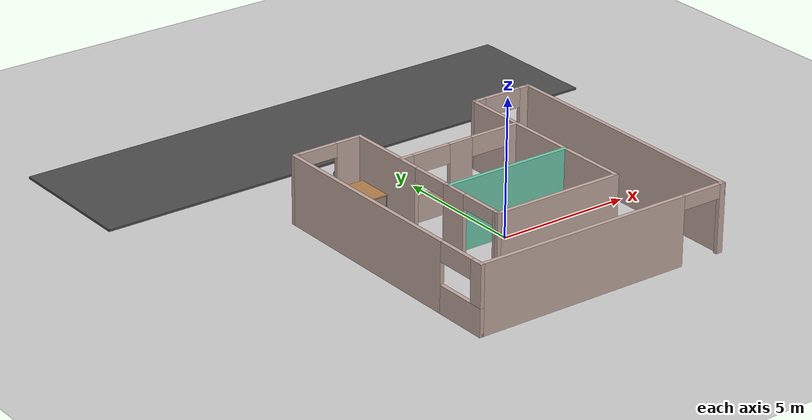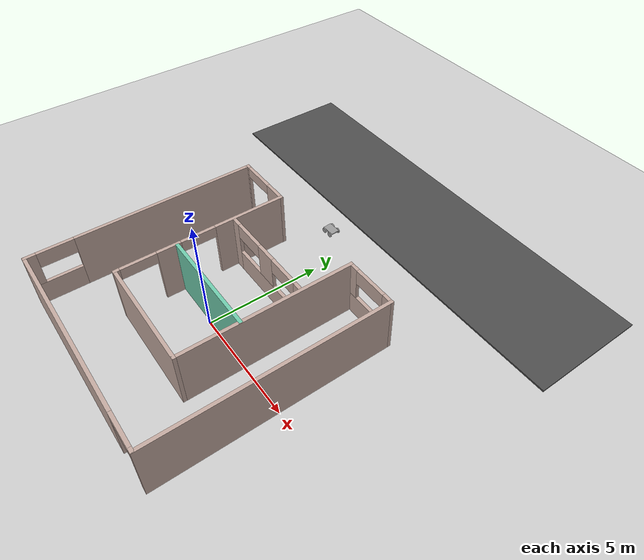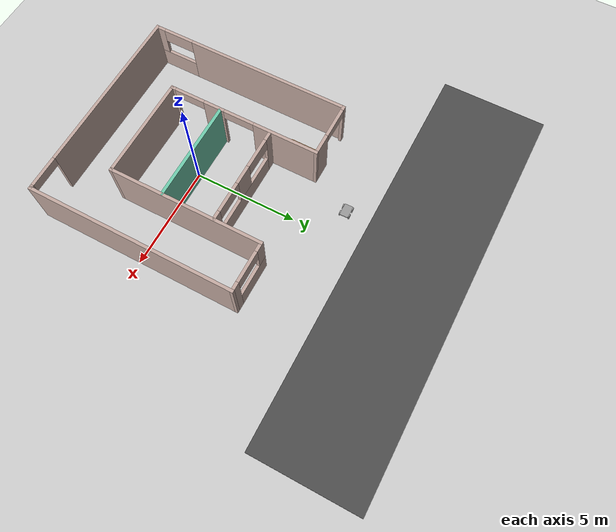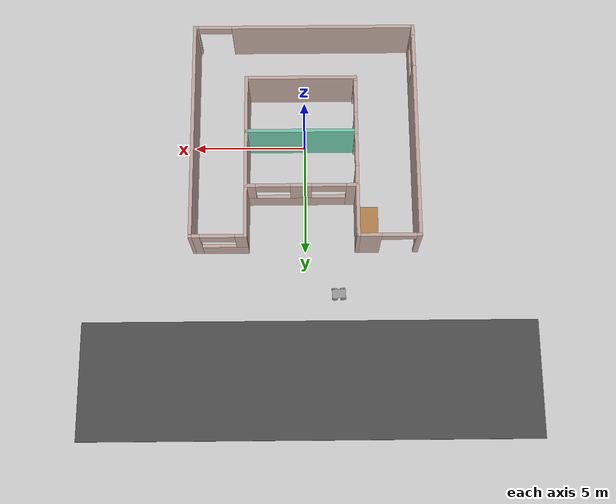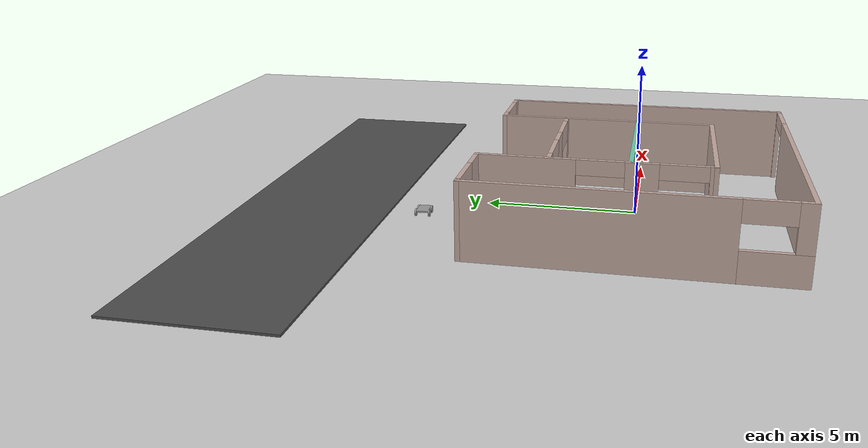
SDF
<sdf version="1.6">
 <world name="firstworld">
  <model name="ground_plane">
   <static>1</static>
   <link name="link">
    <collision name="collision">
     <geometry><plane><normal>0 0 1</normal><size>100 100</size></plane></geometry>
     <surface><friction><ode><mu>100</mu><mu2>50</mu2></ode></friction></surface>
    </collision>
    <visual name="visual">
     <cast_shadows>0</cast_shadows>
     <geometry><plane><normal>0 0 1</normal><size>100 100</size></plane></geometry>
     <material>
      <script><uri>file://media/materials/scripts/gazebo.material</uri><name>Gazebo/Grey</name></script>
     </material>
    </visual>
   </link>
  </model>
  <model name="myhouse2">
   <link name="Wall_12">
    <collision name="Wall_12_Collision">
     <geometry><box><size>4.95 0.15 2.5</size></box></geometry>
     <pose>0 0 1.25 0 -0 0</pose>
    </collision>
    <visual name="Wall_12_Visual">
     <pose>0 0 1.25 0 -0 0</pose>
     <geometry><box><size>4.95 0.15 2.5</size></box></geometry>
     <material>
      <script><uri>file://media/materials/scripts/gazebo.material</uri><name>Gazebo/Grey</name></script>
      <ambient>0.435294 0.796078 0.67451 1</ambient>
     </material>
    </visual>
    <pose>0.154415 0.125579 0 0 -0 0</pose>
   </link>
   <link name="Wall_14">
    <pose>0.171529 2.66127 0 0 -0 0</pose>
    <visual name="Wall_14_Visual_0">
     <pose>-2.21784 0 1.25 0 -0 0</pose>
     <geometry><box><size>0.514324 0.15 2.5</size></box></geometry>
     <material>
      <script><uri>file://media/materials/scripts/gazebo.material</uri><name>Gazebo/Grey</name></script>
      <ambient>0.760784 0.662745 0.627451 1</ambient>
     </material>
    </visual>
    <collision name="Wall_14_Collision_0">
     <geometry><box><size>0.514324 0.15 2.5</size></box></geometry>
     <pose>-2.21784 0 1.25 0 -0 0</pose>
    </collision>
    <visual name="Wall_14_Visual_1">
     <pose>0.257162 0 0.5 0 -0 0</pose>
     <geometry><box><size>4.43568 0.15 1</size></box></geometry>
     <material>
      <script><uri>file://media/materials/scripts/gazebo.material</uri><name>Gazebo/Grey</name></script>
      <ambient>0.760784 0.662745 0.627451 1</ambient>
     </material>
    </visual>
    <collision name="Wall_14_Collision_1">
     <geometry><box><size>4.43568 0.15 1</size></box></geometry>
     <pose>0.257162 0 0.5 0 -0 0</pose>
    </collision>
    <visual name="Wall_14_Visual_2">
     <pose>0.004883 0 1.75 0 -0 0</pose>
     <geometry><box><size>0.931118 0.15 1.5</size></box></geometry>
     <material>
      <script><uri>file://media/materials/scripts/gazebo.material</uri><name>Gazebo/Grey</name></script>
      <ambient>0.760784 0.662745 0.627451 1</ambient>
     </material>
    </visual>
    <collision name="Wall_14_Collision_2">
     <geometry><box><size>0.931118 0.15 1.5</size></box></geometry>
     <pose>0.004883 0 1.75 0 -0 0</pose>
    </collision>
    <visual name="Wall_14_Visual_3">
     <pose>2.22272 0 1.75 0 -0 0</pose>
     <geometry><box><size>0.504558 0.15 1.5</size></box></geometry>
     <material>
      <script><uri>file://media/materials/scripts/gazebo.material</uri><name>Gazebo/Grey</name></script>
      <ambient>0.760784 0.662745 0.627451 1</ambient>
     </material>
    </visual>
    <collision name="Wall_14_Collision_3">
     <geometry><box><size>0.504558 0.15 1.5</size></box></geometry>
     <pose>2.22272 0 1.75 0 -0 0</pose>
    </collision>
    <visual name="Wall_14_Visual_4">
     <pose>-1.21068 0 2.15 0 -0 0</pose>
     <geometry><box><size>1.5 0.15 0.7</size></box></geometry>
     <material>
      <script><uri>file://media/materials/scripts/gazebo.material</uri><name>Gazebo/Grey</name></script>
      <ambient>0.760784 0.662745 0.627451 1</ambient>
     </material>
    </visual>
    <collision name="Wall_14_Collision_4">
     <geometry><box><size>1.5 0.15 0.7</size></box></geometry>
     <pose>-1.21068 0 2.15 0 -0 0</pose>
    </collision>
    <visual name="Wall_14_Visual_5">
     <pose>1.22044 0 2.15 0 -0 0</pose>
     <geometry><box><size>1.5 0.15 0.7</size></box></geometry>
     <material>
      <script><uri>file://media/materials/scripts/gazebo.material</uri><name>Gazebo/Grey</name></script>
      <ambient>0.760784 0.662745 0.627451 1</ambient>
     </material>
    </visual>
    <collision name="Wall_14_Collision_5">
     <geometry><box><size>1.5 0.15 0.7</size></box></geometry>
     <pose>1.22044 0 2.15 0 -0 0</pose>
    </collision>
   </link>
   <link name="Wall_2">
    <pose>-4.925 0 0 0 0 -1.5708</pose>
    <visual name="Wall_2_Visual_0">
     <pose>-1.00495 0 1.25 0 -0 0</pose>
     <geometry><box><size>7.9901 0.15 2.5</size></box></geometry>
     <material>
      <script><uri>file://media/materials/scripts/gazebo.material</uri><name>Gazebo/Grey</name></script>
      <ambient>0.760784 0.662745 0.627451 1</ambient>
     </material>
    </visual>
    <collision name="Wall_2_Collision_0">
     <geometry><box><size>7.9901 0.15 2.5</size></box></geometry>
     <pose>-1.00495 0 1.25 0 -0 0</pose>
    </collision>
    <visual name="Wall_2_Visual_1">
     <pose>3.99505 0 0.5 0 -0 0</pose>
     <geometry><box><size>2.0099 0.15 1</size></box></geometry>
     <material>
      <script><uri>file://media/materials/scripts/gazebo.material</uri><name>Gazebo/Grey</name></script>
      <ambient>0.760784 0.662745 0.627451 1</ambient>
     </material>
    </visual>
    <collision name="Wall_2_Collision_1">
     <geometry><box><size>2.0099 0.15 1</size></box></geometry>
     <pose>3.99505 0 0.5 0 -0 0</pose>
    </collision>
    <visual name="Wall_2_Visual_2">
     <pose>4.74505 0 1.75 0 -0 0</pose>
     <geometry><box><size>0.509904 0.15 1.5</size></box></geometry>
     <material>
      <script><uri>file://media/materials/scripts/gazebo.material</uri><name>Gazebo/Grey</name></script>
      <ambient>0.760784 0.662745 0.627451 1</ambient>
     </material>
    </visual>
    <collision name="Wall_2_Collision_2">
     <geometry><box><size>0.509904 0.15 1.5</size></box></geometry>
     <pose>4.74505 0 1.75 0 -0 0</pose>
    </collision>
    <visual name="Wall_2_Visual_3">
     <pose>3.7401 0 2.15 0 -0 0</pose>
     <geometry><box><size>1.5 0.15 0.7</size></box></geometry>
     <material>
      <script><uri>file://media/materials/scripts/gazebo.material</uri><name>Gazebo/Grey</name></script>
      <ambient>0.760784 0.662745 0.627451 1</ambient>
     </material>
    </visual>
    <collision name="Wall_2_Collision_3">
     <geometry><box><size>1.5 0.15 0.7</size></box></geometry>
     <pose>3.7401 0 2.15 0 -0 0</pose>
    </collision>
   </link>
   <link name="Wall_3">
    <pose>0 -4.925 0 0 -0 0</pose>
    <visual name="Wall_3_Visual_0">
     <pose>-0.86726 0 1.25 0 -0 0</pose>
     <geometry><box><size>8.26548 0.15 2.5</size></box></geometry>
     <material>
      <script><uri>file://media/materials/scripts/gazebo.material</uri><name>Gazebo/Grey</name></script>
      <ambient>0.760784 0.662745 0.627451 1</ambient>
     </material>
    </visual>
    <collision name="Wall_3_Collision_0">
     <geometry><box><size>8.26548 0.15 2.5</size></box></geometry>
     <pose>-0.86726 0 1.25 0 -0 0</pose>
    </collision>
    <visual name="Wall_3_Visual_1">
     <pose>4.88274 0 1.25 0 -0 0</pose>
     <geometry><box><size>0.234519 0.15 2.5</size></box></geometry>
     <material>
      <script><uri>file://media/materials/scripts/gazebo.material</uri><name>Gazebo/Grey</name></script>
      <ambient>0.760784 0.662745 0.627451 1</ambient>
     </material>
    </visual>
    <collision name="Wall_3_Collision_1">
     <geometry><box><size>0.234519 0.15 2.5</size></box></geometry>
     <pose>4.88274 0 1.25 0 -0 0</pose>
    </collision>
    <visual name="Wall_3_Visual_2">
     <pose>4.01548 0 2.25 0 -0 0</pose>
     <geometry><box><size>1.5 0.15 0.5</size></box></geometry>
     <material>
      <script><uri>file://media/materials/scripts/gazebo.material</uri><name>Gazebo/Grey</name></script>
      <ambient>0.760784 0.662745 0.627451 1</ambient>
     </material>
    </visual>
    <collision name="Wall_3_Collision_2">
     <geometry><box><size>1.5 0.15 0.5</size></box></geometry>
     <pose>4.01548 0 2.25 0 -0 0</pose>
    </collision>
   </link>
   <link name="Wall_4">
    <collision name="Wall_4_Collision">
     <geometry><box><size>10 0.15 2.5</size></box></geometry>
     <pose>0 0 1.25 0 -0 0</pose>
    </collision>
    <visual name="Wall_4_Visual">
     <pose>0 0 1.25 0 -0 0</pose>
     <geometry><box><size>10 0.15 2.5</size></box></geometry>
     <material>
      <script><uri>file://media/materials/scripts/gazebo.material</uri><name>Gazebo/Grey</name></script>
      <ambient>0.760784 0.662745 0.627451 1</ambient>
     </material>
    </visual>
    <pose>4.925 0 0 0 -0 1.5708</pose>
   </link>
   <link name="Wall_5">
    <pose>3.75 4.925 0 0 -0 3.14159</pose>
    <visual name="Wall_5_Visual_0">
     <pose>-1.00157 0 1.25 0 -0 0</pose>
     <geometry><box><size>0.49687 0.15 2.5</size></box></geometry>
     <material>
      <script><uri>file://media/materials/scripts/gazebo.material</uri><name>Gazebo/Grey</name></script>
      <ambient>0.760784 0.662745 0.627451 1</ambient>
     </material>
    </visual>
    <collision name="Wall_5_Collision_0">
     <geometry><box><size>0.49687 0.15 2.5</size></box></geometry>
     <pose>-1.00157 0 1.25 0 -0 0</pose>
    </collision>
    <visual name="Wall_5_Visual_1">
     <pose>0.248435 0 0.5 0 -0 0</pose>
     <geometry><box><size>2.00313 0.15 1</size></box></geometry>
     <material>
      <script><uri>file://media/materials/scripts/gazebo.material</uri><name>Gazebo/Grey</name></script>
      <ambient>0.760784 0.662745 0.627451 1</ambient>
     </material>
    </visual>
    <collision name="Wall_5_Collision_1">
     <geometry><box><size>2.00313 0.15 1</size></box></geometry>
     <pose>0.248435 0 0.5 0 -0 0</pose>
    </collision>
    <visual name="Wall_5_Visual_2">
     <pose>0.998435 0 1.75 0 -0 0</pose>
     <geometry><box><size>0.50313 0.15 1.5</size></box></geometry>
     <material>
      <script><uri>file://media/materials/scripts/gazebo.material</uri><name>Gazebo/Grey</name></script>
      <ambient>0.760784 0.662745 0.627451 1</ambient>
     </material>
    </visual>
    <collision name="Wall_5_Collision_2">
     <geometry><box><size>0.50313 0.15 1.5</size></box></geometry>
     <pose>0.998435 0 1.75 0 -0 0</pose>
    </collision>
    <visual name="Wall_5_Visual_3">
     <pose>-0.00313 0 2.15 0 -0 0</pose>
     <geometry><box><size>1.5 0.15 0.7</size></box></geometry>
     <material>
      <script><uri>file://media/materials/scripts/gazebo.material</uri><name>Gazebo/Grey</name></script>
      <ambient>0.760784 0.662745 0.627451 1</ambient>
     </material>
    </visual>
    <collision name="Wall_5_Collision_3">
     <geometry><box><size>1.5 0.15 0.7</size></box></geometry>
     <pose>-0.00313 0 2.15 0 -0 0</pose>
    </collision>
   </link>
   <link name="Wall_6">
    <collision name="Wall_6_Collision">
     <geometry><box><size>7.5 0.15 2.5</size></box></geometry>
     <pose>0 0 1.25 0 -0 0</pose>
    </collision>
    <visual name="Wall_6_Visual">
     <pose>0 0 1.25 0 -0 0</pose>
     <geometry><box><size>7.5 0.15 2.5</size></box></geometry>
     <material>
      <script><uri>file://media/materials/scripts/gazebo.material</uri><name>Gazebo/Grey</name></script>
      <ambient>0.760784 0.662745 0.627451 1</ambient>
     </material>
    </visual>
    <pose>2.575 1.25 0 0 0 -1.5708</pose>
   </link>
   <link name="Wall_7">
    <collision name="Wall_7_Collision">
     <geometry><box><size>5 0.15 2.5</size></box></geometry>
     <pose>0 0 1.25 0 -0 0</pose>
    </collision>
    <visual name="Wall_7_Visual">
     <pose>0 0 1.25 0 -0 0</pose>
     <geometry><box><size>5 0.15 2.5</size></box></geometry>
     <material>
      <script><uri>file://media/materials/scripts/gazebo.material</uri><name>Gazebo/Grey</name></script>
      <ambient>0.760784 0.662745 0.627451 1</ambient>
     </material>
    </visual>
    <pose>0.150001 -2.425 0 0 -0 3.14159</pose>
   </link>
   <link name="Wall_8">
    <pose>-2.275 1.25 0 0 -0 1.5708</pose>
    <visual name="Wall_8_Visual_0">
     <pose>-3.61694 0 1.25 0 -0 0</pose>
     <geometry><box><size>0.266121 0.15 2.5</size></box></geometry>
     <material>
      <script><uri>file://media/materials/scripts/gazebo.material</uri><name>Gazebo/Grey</name></script>
      <ambient>0.760784 0.662745 0.627451 1</ambient>
     </material>
    </visual>
    <collision name="Wall_8_Collision_0">
     <geometry><box><size>0.266121 0.15 2.5</size></box></geometry>
     <pose>-3.61694 0 1.25 0 -0 0</pose>
    </collision>
    <visual name="Wall_8_Visual_1">
     <pose>-1.46585 0 1.25 0 -0 0</pose>
     <geometry><box><size>1.03606 0.15 2.5</size></box></geometry>
     <material>
      <script><uri>file://media/materials/scripts/gazebo.material</uri><name>Gazebo/Grey</name></script>
      <ambient>0.760784 0.662745 0.627451 1</ambient>
     </material>
    </visual>
    <collision name="Wall_8_Collision_1">
     <geometry><box><size>1.03606 0.15 2.5</size></box></geometry>
     <pose>-1.46585 0 1.25 0 -0 0</pose>
    </collision>
    <visual name="Wall_8_Visual_2">
     <pose>2.15109 0 1.25 0 -0 0</pose>
     <geometry><box><size>3.19782 0.15 2.5</size></box></geometry>
     <material>
      <script><uri>file://media/materials/scripts/gazebo.material</uri><name>Gazebo/Grey</name></script>
      <ambient>0.760784 0.662745 0.627451 1</ambient>
     </material>
    </visual>
    <collision name="Wall_8_Collision_2">
     <geometry><box><size>3.19782 0.15 2.5</size></box></geometry>
     <pose>2.15109 0 1.25 0 -0 0</pose>
    </collision>
    <visual name="Wall_8_Visual_3">
     <pose>-2.73388 0 2.25 0 -0 0</pose>
     <geometry><box><size>1.5 0.15 0.5</size></box></geometry>
     <material>
      <script><uri>file://media/materials/scripts/gazebo.material</uri><name>Gazebo/Grey</name></script>
      <ambient>0.760784 0.662745 0.627451 1</ambient>
     </material>
    </visual>
    <collision name="Wall_8_Collision_3">
     <geometry><box><size>1.5 0.15 0.5</size></box></geometry>
     <pose>-2.73388 0 2.25 0 -0 0</pose>
    </collision>
    <visual name="Wall_8_Visual_4">
     <pose>-0.197819 0 2.25 0 -0 0</pose>
     <geometry><box><size>1.5 0.15 0.5</size></box></geometry>
     <material>
      <script><uri>file://media/materials/scripts/gazebo.material</uri><name>Gazebo/Grey</name></script>
      <ambient>0.760784 0.662745 0.627451 1</ambient>
     </material>
    </visual>
    <collision name="Wall_8_Collision_4">
     <geometry><box><size>1.5 0.15 0.5</size></box></geometry>
     <pose>-0.197819 0 2.25 0 -0 0</pose>
    </collision>
   </link>
   <link name="Wall_9">
    <pose>-3.6 4.925 0 0 -0 3.14159</pose>
    <visual name="Wall_9_Visual_0">
     <pose>-0.868771 0 1.25 0 -0 0</pose>
     <geometry><box><size>1.06246 0.15 2.5</size></box></geometry>
     <material>
      <script><uri>file://media/materials/scripts/gazebo.material</uri><name>Gazebo/Grey</name></script>
      <ambient>0.760784 0.662745 0.627451 1</ambient>
     </material>
    </visual>
    <collision name="Wall_9_Collision_0">
     <geometry><box><size>1.06246 0.15 2.5</size></box></geometry>
     <pose>-0.868771 0 1.25 0 -0 0</pose>
    </collision>
    <visual name="Wall_9_Visual_1">
     <pose>1.28123 0 1.25 0 -0 0</pose>
     <geometry><box><size>0.237542 0.15 2.5</size></box></geometry>
     <material>
      <script><uri>file://media/materials/scripts/gazebo.material</uri><name>Gazebo/Grey</name></script>
      <ambient>0.760784 0.662745 0.627451 1</ambient>
     </material>
    </visual>
    <collision name="Wall_9_Collision_1">
     <geometry><box><size>0.237542 0.15 2.5</size></box></geometry>
     <pose>1.28123 0 1.25 0 -0 0</pose>
    </collision>
    <visual name="Wall_9_Visual_2">
     <pose>0.412458 0 2.25 0 -0 0</pose>
     <geometry><box><size>1.5 0.15 0.5</size></box></geometry>
     <material>
      <script><uri>file://media/materials/scripts/gazebo.material</uri><name>Gazebo/Grey</name></script>
      <ambient>0.760784 0.662745 0.627451 1</ambient>
     </material>
    </visual>
    <collision name="Wall_9_Collision_2">
     <geometry><box><size>1.5 0.15 0.5</size></box></geometry>
     <pose>0.412458 0 2.25 0 -0 0</pose>
    </collision>
   </link>
   <static>1</static>
  </model>
  <model name="table">
   <static>0</static>
   <link name="link">
    <collision name="surface">
     <pose>0 0 1 0 -0 0</pose>
     <geometry><box><size>1.5 0.8 0.03</size></box></geometry>
     <surface><friction><ode><mu>0.6</mu><mu2>0.6</mu2></ode></friction></surface>
    </collision>
    <visual name="visual1">
     <pose>0 0 1 0 -0 0</pose>
     <geometry><box><size>1.4 0.8 0.04</size></box></geometry>
     <material>
      <script><uri>file://media/materials/scripts/gazebo.material</uri><name>Gazebo/Wood</name></script>
     </material>
    </visual>
    <collision name="front_left_leg">
     <pose>0.68 0.38 0.5 0 -0 0</pose>
     <geometry><cylinder><radius>0.02</radius><length>1</length></cylinder></geometry>
    </collision>
    <visual name="front_left_leg">
     <pose>0.68 0.38 0.5 0 -0 0</pose>
     <geometry><cylinder><radius>0.02</radius><length>1</length></cylinder></geometry>
     <material>
      <script><uri>file://media/materials/scripts/gazebo.material</uri><name>Gazebo/Grey</name></script>
     </material>
    </visual>
    <collision name="front_right_leg">
     <pose>0.68 -0.38 0.5 0 -0 0</pose>
     <geometry><cylinder><radius>0.02</radius><length>1</length></cylinder></geometry>
    </collision>
    <visual name="front_right_leg">
     <pose>0.68 -0.38 0.5 0 -0 0</pose>
     <geometry><cylinder><radius>0.02</radius><length>1</length></cylinder></geometry>
     <material>
      <script><uri>file://media/materials/scripts/gazebo.material</uri><name>Gazebo/Grey</name></script>
     </material>
    </visual>
    <collision name="back_right_leg">
     <pose>-0.68 -0.38 0.5 0 -0 0</pose>
     <geometry><cylinder><radius>0.02</radius><length>1</length></cylinder></geometry>
    </collision>
    <visual name="back_right_leg">
     <pose>-0.68 -0.38 0.5 0 -0 0</pose>
     <geometry><cylinder><radius>0.02</radius><length>1</length></cylinder></geometry>
     <material>
      <script><uri>file://media/materials/scripts/gazebo.material</uri><name>Gazebo/Grey</name></script>
     </material>
    </visual>
    <collision name="back_left_leg">
     <pose>-0.68 0.38 0.5 0 -0 0</pose>
     <geometry><cylinder><radius>0.02</radius><length>1</length></cylinder></geometry>
    </collision>
    <visual name="back_left_leg">
     <pose>-0.68 0.38 0.5 0 -0 0</pose>
     <geometry><cylinder><radius>0.02</radius><length>1</length></cylinder></geometry>
     <material>
      <script><uri>file://media/materials/scripts/gazebo.material</uri><name>Gazebo/Grey</name></script>
     </material>
    </visual>
    <inertial>
     <inertia><ixx>1</ixx><ixy>0</ixy><ixz>0</ixz><iyy>1</iyy><iyz>0</iyz><izz>1</izz></inertia>
     <mass>1</mass>
    </inertial>
   </link>
   <pose>-2.80849 3.90587 -9e-06 0 -2e-06 1.57</pose>
  </model>
  <model name="asphalt_plane">
   <static>1</static>
   <link name="link">
    <collision name="collision"><geometry><box><size>20 5.1617 0.1</size></box></geometry></collision>
    <visual name="visual">
     <cast_shadows>0</cast_shadows>
     <geometry><box><size>20 5.1617 0.1</size></box></geometry>
     <material>
      <script>
       <uri>model://asphalt_plane/materials/scripts</uri>
       <uri>model://asphalt_plane/materials/textures</uri>
       <name>vrc/asphalt</name>
      </script>
     </material>
    </visual>
   </link>
   <pose>-0.173084 10.6876 0 0 -0 0</pose>
  </model>
  <model name="mybot">
   <link name="link_0">
    <pose>0 0 0.056 0 -0 0</pose>
    <inertial>
     <mass>1</mass>
     <inertia>
      <ixx>0.166667</ixx>
      <ixy>0</ixy>
      <ixz>0</ixz>
      <iyy>0.166667</iyy>
      <iyz>0</iyz>
      <izz>0.166667</izz>
     </inertia>
    </inertial>
    <visual name="visual">
     <geometry><box><size>0.6 0.4 0.05</size></box></geometry>
     <material>
      <lighting>1</lighting>
      <script><uri>file://media/materials/scripts/gazebo.material</uri><name>Gazebo/Grey</name></script>
      <ambient>0.3 0.3 0.3 1</ambient>
      <diffuse>0.7 0.7 0.7 1</diffuse>
      <specular>0.01 0.01 0.01 1</specular>
      <emissive>0 0 0 1</emissive>
      <shader type="vertex"><normal_map>__default__</normal_map></shader>
     </material>
    </visual>
    <collision name="collision">
     <geometry><box><size>0.6 0.4 0.05</size></box></geometry>
     <surface>
      <friction>
       <ode><mu>1</mu><mu2>1</mu2><fdir1>0 0 0</fdir1><slip1>0</slip1><slip2>0</slip2></ode>
       <torsional>
        <coefficient>1</coefficient>
        <patch_radius>0</patch_radius>
        <surface_radius>0</surface_radius>
        <use_patch_radius>1</use_patch_radius>
        <ode><slip>0</slip></ode>
       </torsional>
      </friction>
      <bounce><restitution_coefficient>0</restitution_coefficient><threshold>1e+06</threshold></bounce>
      <contact>
       <collide_without_contact>0</collide_without_contact>
       <collide_without_contact_bitmask>1</collide_without_contact_bitmask>
       <collide_bitmask>1</collide_bitmask>
       <ode>
        <soft_cfm>0</soft_cfm>
        <soft_erp>0.2</soft_erp>
        <kp>1e+13</kp>
        <kd>1</kd>
        <max_vel>0.01</max_vel>
        <min_depth>0</min_depth>
       </ode>
       <bullet>
        <split_impulse>1</split_impulse>
        <split_impulse_penetration_threshold>-0.01</split_impulse_penetration_threshold>
        <soft_cfm>0</soft_cfm>
        <soft_erp>0.2</soft_erp>
        <kp>1e+13</kp>
        <kd>1</kd>
       </bullet>
      </contact>
     </surface>
    </collision>
   </link>
   <link name="link_1">
    <pose>-0.18 -0.225096 -0.014 1.57 -0 0</pose>
    <inertial>
     <mass>1</mass>
     <inertia><ixx>0.145833</ixx><ixy>0</ixy><ixz>0</ixz><iyy>0.145833</iyy><iyz>0</iyz><izz>0.125</izz></inertia>
    </inertial>
    <visual name="visual">
     <geometry><cylinder><radius>0.12</radius><length>0.05</length></cylinder></geometry>
     <material>
      <lighting>1</lighting>
      <script><uri>file://media/materials/scripts/gazebo.material</uri><name>Gazebo/Grey</name></script>
      <ambient>0.3 0.3 0.3 1</ambient>
      <diffuse>0.7 0.7 0.7 1</diffuse>
      <specular>0.01 0.01 0.01 1</specular>
      <emissive>0 0 0 1</emissive>
      <shader type="vertex"><normal_map>__default__</normal_map></shader>
     </material>
    </visual>
    <collision name="collision">
     <geometry><cylinder><radius>0.12</radius><length>0.05</length></cylinder></geometry>
     <surface>
      <friction>
       <ode><mu>1</mu><mu2>1</mu2><fdir1>0 0 0</fdir1><slip1>0</slip1><slip2>0</slip2></ode>
       <torsional>
        <coefficient>1</coefficient>
        <patch_radius>0</patch_radius>
        <surface_radius>0</surface_radius>
        <use_patch_radius>1</use_patch_radius>
        <ode><slip>0</slip></ode>
       </torsional>
      </friction>
      <bounce><restitution_coefficient>0</restitution_coefficient><threshold>1e+06</threshold></bounce>
      <contact>
       <collide_without_contact>0</collide_without_contact>
       <collide_without_contact_bitmask>1</collide_without_contact_bitmask>
       <collide_bitmask>1</collide_bitmask>
       <ode>
        <soft_cfm>0</soft_cfm>
        <soft_erp>0.2</soft_erp>
        <kp>1e+13</kp>
        <kd>1</kd>
        <max_vel>0.01</max_vel>
        <min_depth>0</min_depth>
       </ode>
       <bullet>
        <split_impulse>1</split_impulse>
        <split_impulse_penetration_threshold>-0.01</split_impulse_penetration_threshold>
        <soft_cfm>0</soft_cfm>
        <soft_erp>0.2</soft_erp>
        <kp>1e+13</kp>
        <kd>1</kd>
       </bullet>
      </contact>
     </surface>
    </collision>
   </link>
   <link name="link_1_clone">
    <pose>-0.18 0.225096 -0.014 1.57 -0 0</pose>
    <inertial>
     <mass>1</mass>
     <inertia><ixx>0.145833</ixx><ixy>0</ixy><ixz>0</ixz><iyy>0.145833</iyy><iyz>0</iyz><izz>0.125</izz></inertia>
    </inertial>
    <visual name="visual">
     <geometry><cylinder><radius>0.12</radius><length>0.05</length></cylinder></geometry>
     <material>
      <lighting>1</lighting>
      <script><uri>file://media/materials/scripts/gazebo.material</uri><name>Gazebo/Grey</name></script>
      <ambient>0.3 0.3 0.3 1</ambient>
      <diffuse>0.7 0.7 0.7 1</diffuse>
      <specular>0.01 0.01 0.01 1</specular>
      <emissive>0 0 0 1</emissive>
      <shader type="vertex"><normal_map>__default__</normal_map></shader>
     </material>
    </visual>
    <collision name="collision">
     <geometry><cylinder><radius>0.12</radius><length>0.05</length></cylinder></geometry>
     <surface>
      <friction>
       <ode><mu>1</mu><mu2>1</mu2><fdir1>0 0 0</fdir1><slip1>0</slip1><slip2>0</slip2></ode>
       <torsional>
        <coefficient>1</coefficient>
        <patch_radius>0</patch_radius>
        <surface_radius>0</surface_radius>
        <use_patch_radius>1</use_patch_radius>
        <ode><slip>0</slip></ode>
       </torsional>
      </friction>
      <bounce><restitution_coefficient>0</restitution_coefficient><threshold>1e+06</threshold></bounce>
      <contact>
       <collide_without_contact>0</collide_without_contact>
       <collide_without_contact_bitmask>1</collide_without_contact_bitmask>
       <collide_bitmask>1</collide_bitmask>
       <ode>
        <soft_cfm>0</soft_cfm>
        <soft_erp>0.2</soft_erp>
        <kp>1e+13</kp>
        <kd>1</kd>
        <max_vel>0.01</max_vel>
        <min_depth>0</min_depth>
       </ode>
       <bullet>
        <split_impulse>1</split_impulse>
        <split_impulse_penetration_threshold>-0.01</split_impulse_penetration_threshold>
        <soft_cfm>0</soft_cfm>
        <soft_erp>0.2</soft_erp>
        <kp>1e+13</kp>
        <kd>1</kd>
       </bullet>
      </contact>
     </surface>
    </collision>
   </link>
   <link name="link_1_clone_0">
    <pose>0.18 -0.225096 -0.014 1.57 -0 0</pose>
    <inertial>
     <mass>1</mass>
     <inertia><ixx>0.145833</ixx><ixy>0</ixy><ixz>0</ixz><iyy>0.145833</iyy><iyz>0</iyz><izz>0.125</izz></inertia>
    </inertial>
    <visual name="visual">
     <geometry><cylinder><radius>0.12</radius><length>0.05</length></cylinder></geometry>
     <material>
      <lighting>1</lighting>
      <script><uri>file://media/materials/scripts/gazebo.material</uri><name>Gazebo/Grey</name></script>
      <ambient>0.3 0.3 0.3 1</ambient>
      <diffuse>0.7 0.7 0.7 1</diffuse>
      <specular>0.01 0.01 0.01 1</specular>
      <emissive>0 0 0 1</emissive>
      <shader type="vertex"><normal_map>__default__</normal_map></shader>
     </material>
    </visual>
    <collision name="collision">
     <geometry><cylinder><radius>0.12</radius><length>0.05</length></cylinder></geometry>
     <surface>
      <friction>
       <ode><mu>1</mu><mu2>1</mu2><fdir1>0 0 0</fdir1><slip1>0</slip1><slip2>0</slip2></ode>
       <torsional>
        <coefficient>1</coefficient>
        <patch_radius>0</patch_radius>
        <surface_radius>0</surface_radius>
        <use_patch_radius>1</use_patch_radius>
        <ode><slip>0</slip></ode>
       </torsional>
      </friction>
      <bounce><restitution_coefficient>0</restitution_coefficient><threshold>1e+06</threshold></bounce>
      <contact>
       <collide_without_contact>0</collide_without_contact>
       <collide_without_contact_bitmask>1</collide_without_contact_bitmask>
       <collide_bitmask>1</collide_bitmask>
       <ode>
        <soft_cfm>0</soft_cfm>
        <soft_erp>0.2</soft_erp>
        <kp>1e+13</kp>
        <kd>1</kd>
        <max_vel>0.01</max_vel>
        <min_depth>0</min_depth>
       </ode>
       <bullet>
        <split_impulse>1</split_impulse>
        <split_impulse_penetration_threshold>-0.01</split_impulse_penetration_threshold>
        <soft_cfm>0</soft_cfm>
        <soft_erp>0.2</soft_erp>
        <kp>1e+13</kp>
        <kd>1</kd>
       </bullet>
      </contact>
     </surface>
    </collision>
   </link>
   <link name="link_1_clone_1">
    <pose>0.18 0.225096 -0.014 1.57 -0 0</pose>
    <inertial>
     <mass>1</mass>
     <inertia><ixx>0.145833</ixx><ixy>0</ixy><ixz>0</ixz><iyy>0.145833</iyy><iyz>0</iyz><izz>0.125</izz></inertia>
    </inertial>
    <visual name="visual">
     <geometry><cylinder><radius>0.12</radius><length>0.05</length></cylinder></geometry>
     <material>
      <lighting>1</lighting>
      <script><uri>file://media/materials/scripts/gazebo.material</uri><name>Gazebo/Grey</name></script>
      <ambient>0.3 0.3 0.3 1</ambient>
      <diffuse>0.7 0.7 0.7 1</diffuse>
      <specular>0.01 0.01 0.01 1</specular>
      <emissive>0 0 0 1</emissive>
      <shader type="vertex"><normal_map>__default__</normal_map></shader>
     </material>
    </visual>
    <collision name="collision">
     <geometry><cylinder><radius>0.12</radius><length>0.05</length></cylinder></geometry>
     <surface>
      <friction>
       <ode><mu>1</mu><mu2>1</mu2><fdir1>0 0 0</fdir1><slip1>0</slip1><slip2>0</slip2></ode>
       <torsional>
        <coefficient>1</coefficient>
        <patch_radius>0</patch_radius>
        <surface_radius>0</surface_radius>
        <use_patch_radius>1</use_patch_radius>
        <ode><slip>0</slip></ode>
       </torsional>
      </friction>
      <bounce><restitution_coefficient>0</restitution_coefficient><threshold>1e+06</threshold></bounce>
      <contact>
       <collide_without_contact>0</collide_without_contact>
       <collide_without_contact_bitmask>1</collide_without_contact_bitmask>
       <collide_bitmask>1</collide_bitmask>
       <ode>
        <soft_cfm>0</soft_cfm>
        <soft_erp>0.2</soft_erp>
        <kp>1e+13</kp>
        <kd>1</kd>
        <max_vel>0.01</max_vel>
        <min_depth>0</min_depth>
       </ode>
       <bullet>
        <split_impulse>1</split_impulse>
        <split_impulse_penetration_threshold>-0.01</split_impulse_penetration_threshold>
        <soft_cfm>0</soft_cfm>
        <soft_erp>0.2</soft_erp>
        <kp>1e+13</kp>
        <kd>1</kd>
       </bullet>
      </contact>
     </surface>
    </collision>
   </link>
   <joint name="link_0_JOINT_1" type="revolute">
    <parent>link_0</parent>
    <child>link_1_clone</child>
    <axis>
     <xyz>0 0 1</xyz>
     <use_parent_model_frame>0</use_parent_model_frame>
     <limit>
      <lower>-1.79769e+308</lower>
      <upper>1.79769e+308</upper>
      <effort>-1</effort>
      <velocity>-1</velocity>
     </limit>
     <dynamics>
      <spring_reference>0</spring_reference>
      <spring_stiffness>0</spring_stiffness>
      <damping>0</damping>
     </dynamics>
    </axis>
    <physics>
     <ode><limit><cfm>0</cfm><erp>0.2</erp></limit><suspension><cfm>0</cfm><erp>0.2</erp></suspension></ode>
    </physics>
   </joint>
   <joint name="link_0_JOINT_2" type="revolute">
    <parent>link_0</parent>
    <child>link_1</child>
    <axis>
     <xyz>0 0 1</xyz>
     <use_parent_model_frame>0</use_parent_model_frame>
     <limit>
      <lower>-1.79769e+308</lower>
      <upper>1.79769e+308</upper>
      <effort>-1</effort>
      <velocity>-1</velocity>
     </limit>
     <dynamics>
      <spring_reference>0</spring_reference>
      <spring_stiffness>0</spring_stiffness>
      <damping>0</damping>
     </dynamics>
    </axis>
    <physics>
     <ode><limit><cfm>0</cfm><erp>0.2</erp></limit><suspension><cfm>0</cfm><erp>0.2</erp></suspension></ode>
    </physics>
   </joint>
   <joint name="link_0_JOINT_3" type="revolute">
    <parent>link_0</parent>
    <child>link_1_clone_0</child>
    <axis>
     <xyz>0 0 1</xyz>
     <use_parent_model_frame>0</use_parent_model_frame>
     <limit>
      <lower>-1.79769e+308</lower>
      <upper>1.79769e+308</upper>
      <effort>-1</effort>
      <velocity>-1</velocity>
     </limit>
     <dynamics>
      <spring_reference>0</spring_reference>
      <spring_stiffness>0</spring_stiffness>
      <damping>0</damping>
     </dynamics>
    </axis>
    <physics>
     <ode><limit><cfm>0</cfm><erp>0.2</erp></limit><suspension><cfm>0</cfm><erp>0.2</erp></suspension></ode>
    </physics>
   </joint>
   <joint name="link_0_JOINT_4" type="revolute">
    <parent>link_0</parent>
    <child>link_1_clone_1</child>
    <axis>
     <xyz>0 0 1</xyz>
     <use_parent_model_frame>0</use_parent_model_frame>
     <limit>
      <lower>-1.79769e+308</lower>
      <upper>1.79769e+308</upper>
      <effort>-1</effort>
      <velocity>-1</velocity>
     </limit>
     <dynamics>
      <spring_reference>0</spring_reference>
      <spring_stiffness>0</spring_stiffness>
      <damping>0</damping>
     </dynamics>
    </axis>
    <physics>
     <ode><limit><cfm>0</cfm><erp>0.2</erp></limit><suspension><cfm>0</cfm><erp>0.2</erp></suspension></ode>
    </physics>
   </joint>
   <static>0</static>
   <pose>-1.45628 6.93204 0.13402 0 -0 0.040828</pose>
  </model>
 </world>
</sdf>
